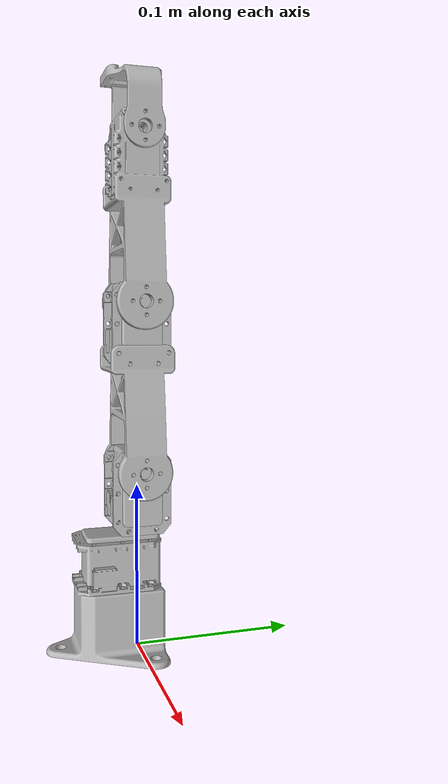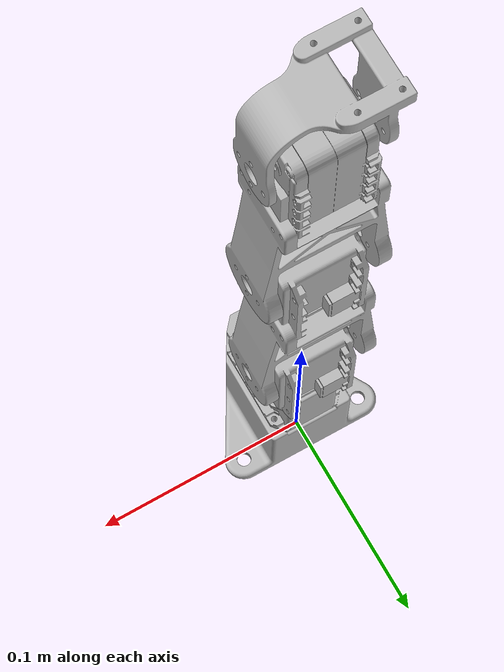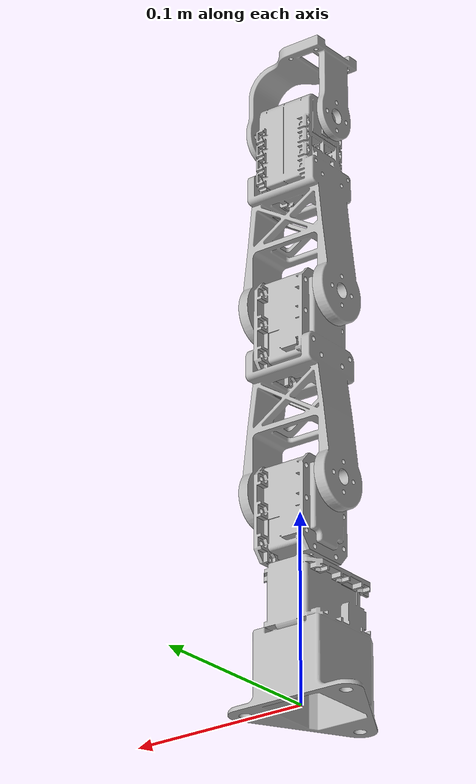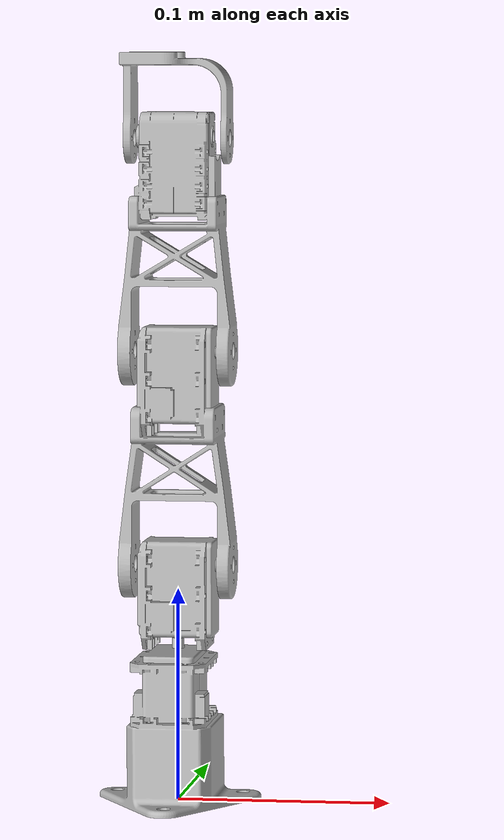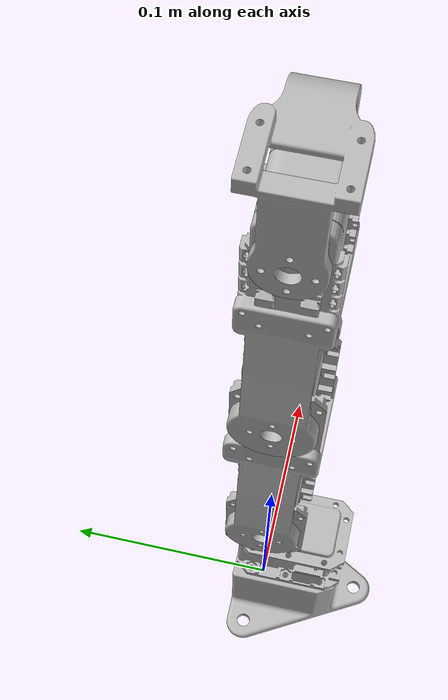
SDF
<?xml version='1.0' ?>
<sdf version='1.5'>
<model name='rexarm'>
    <link name='base'>
        <pose>0 0 0.0542 0 0 0</pose>
        <inertial>
            <mass>0.075</mass>
            <inertia>
                <ixx>2.2649e-05</ixx>
                <ixy>3.6778e-08</ixy>
                <ixz>-2.1305e-07</ixz>
                <iyy>1.2868e-05</iyy>
                <iyz>-1.1145e-06</iyz>
                <izz>1.77331e-05</izz>
            </inertia>
        </inertial>
        <collision name='collision'>
            <geometry>
                <mesh><uri>model://rexarm/meshes/base.dae</uri></mesh>
            </geometry>
        </collision>
        <visual name='visual'>
            <geometry>
                <mesh><uri>model://rexarm/meshes/base.dae</uri></mesh>
            </geometry>
        </visual>
		<gravity>0</gravity>
    </link>
    <link name='shoulder1'>
        <pose>0 0 0.1112 1.5708 0 1.5708</pose>
        <inertial>
            <mass>0.075</mass>
            <inertia>
                <ixx>2.2649e-05</ixx>
                <ixy>3.6778e-08</ixy>
                <ixz>-2.1305e-07</ixz>
                <iyy>1.2868e-05</iyy>
                <iyz>-1.1145e-06</iyz>
                <izz>1.77331e-05</izz>
            </inertia>
        </inertial>
        <collision name='collision'>
            <geometry>
                <mesh><uri>model://rexarm/meshes/shoulder1.dae</uri></mesh>
            </geometry>
        </collision>
        <visual name='visual'>
            <geometry>
                <mesh><uri>model://rexarm/meshes/shoulder1.dae</uri></mesh>
            </geometry>
        </visual>
		<gravity>0</gravity>
    </link>
    <link name='shoulder2'>
        <pose>0 0 0.2117 1.5708 0 1.5708</pose>
        <inertial>
            <mass>0.075</mass>
            <inertia>
                <ixx>2.2649e-05</ixx>
                <ixy>3.6778e-08</ixy>
                <ixz>-2.1305e-07</ixz>
                <iyy>1.2868e-05</iyy>
                <iyz>-1.1145e-06</iyz>
                <izz>1.77331e-05</izz>
            </inertia>
        </inertial>
        <collision name='collision'>
            <geometry>
                <mesh><uri>model://rexarm/meshes/shoulder2.dae</uri></mesh>
            </geometry>
        </collision>
        <visual name='visual'>
            <geometry>
                <mesh><uri>model://rexarm/meshes/shoulder2.dae</uri></mesh>
            </geometry>
        </visual>
		<gravity>0</gravity>
    </link>
    <link name='elbow'>
        <pose>0 0 0.3117 1.5708 0 1.5708</pose>
        <inertial>
            <mass>0.075</mass>
            <inertia>
                <ixx>2.2649e-05</ixx>
                <ixy>3.6778e-08</ixy>
                <ixz>-2.1305e-07</ixz>
                <iyy>1.2868e-05</iyy>
                <iyz>-1.1145e-06</iyz>
                <izz>1.77331e-05</izz>
            </inertia>
        </inertial>
        <collision name='collision'>
            <geometry>
                <mesh><uri>model://rexarm/meshes/elbow.dae</uri></mesh>
            </geometry>
        </collision>
        <visual name='visual'>
            <geometry>
                <mesh><uri>model://rexarm/meshes/elbow.dae</uri></mesh>
            </geometry>
        </visual>
		<gravity>0</gravity>
    </link>
    <link name='wrist'>
        <pose>0 0 0.3117 1.5708 0 1.5708</pose>
        <inertial>
            <mass>10e-10</mass>
            <inertia>
                <ixx>1</ixx>
                <ixy>0</ixy>
                <ixz>0</ixz>
                <iyy>1</iyy>
                <iyz>0</iyz>
                <izz>1</izz>
            </inertia>
        </inertial>
        <collision name='collision'>
            <geometry>
                <mesh><uri>model://rexarm/meshes/wrist.dae</uri></mesh>
            </geometry>
        </collision>
        <visual name='visual'>
            <geometry>
                <mesh><uri>model://rexarm/meshes/wrist.dae</uri></mesh>
            </geometry>
        </visual>
		<gravity>0</gravity>
    </link>
    <joint type='revolute' name='base_joint'>
        <pose>0 -0.039 0 0 0 0</pose>
        <parent>base</parent>
        <child>shoulder1</child>
        <axis>
            <xyz>0 1 0</xyz>
            <limit>
                <lower>-3.14</lower>
                <upper>3.14</upper>
                <effort>0.5</effort>
                <velocity>5.76</velocity>
            </limit>
        </axis>
        <physics>
            <ode>
                <max_force>0.5</max_force>
            </ode>
        </physics>
    </joint>
    <joint type='revolute' name='shoulder_joint'>
        <pose>0 -0.1005 0 0 0 0</pose>
        <parent>shoulder1</parent>
        <child>shoulder2</child>
        <axis>
            <xyz>0 0 1</xyz>
            <limit>
                <lower>-3.14</lower>
                <upper>3.14</upper>
                <effort>0.5</effort>
                <velocity>5.76</velocity>
            </limit>
        </axis>
        <physics>
            <ode>
                <max_force>0.5</max_force>
            </ode>
        </physics>
    </joint>
    <joint type='revolute' name='elbow_joint'>
        <pose>0 -0.1 0 0 0 0</pose>
        <parent>shoulder2</parent>
        <child>elbow</child>
        <axis>
            <xyz>0 0 1</xyz>
            <limit>
                <lower>-3.14</lower>
                <upper>3.14</upper>
                <effort>0.3</effort>
                <velocity>5.76</velocity>
            </limit>
        </axis>
        <physics>
            <ode>
                <max_force>0.3</max_force>
            </ode>
        </physics>
    </joint>
    <joint type='revolute' name='wrist_joint'>
        <pose>0 0 0 0 0 0</pose>
        <parent>elbow</parent>
        <child>wrist</child>
        <axis>
            <xyz>0 0 1</xyz>
            <limit>
                <lower>-3.14</lower>
                <upper>3.14</upper>
                <velocity>0.0298</velocity>
            </limit>
        </axis>
        <physics>
            <ode>
                <max_force>0.3</max_force>
            </ode>
        </physics>
    </joint>
</model>
</sdf>
